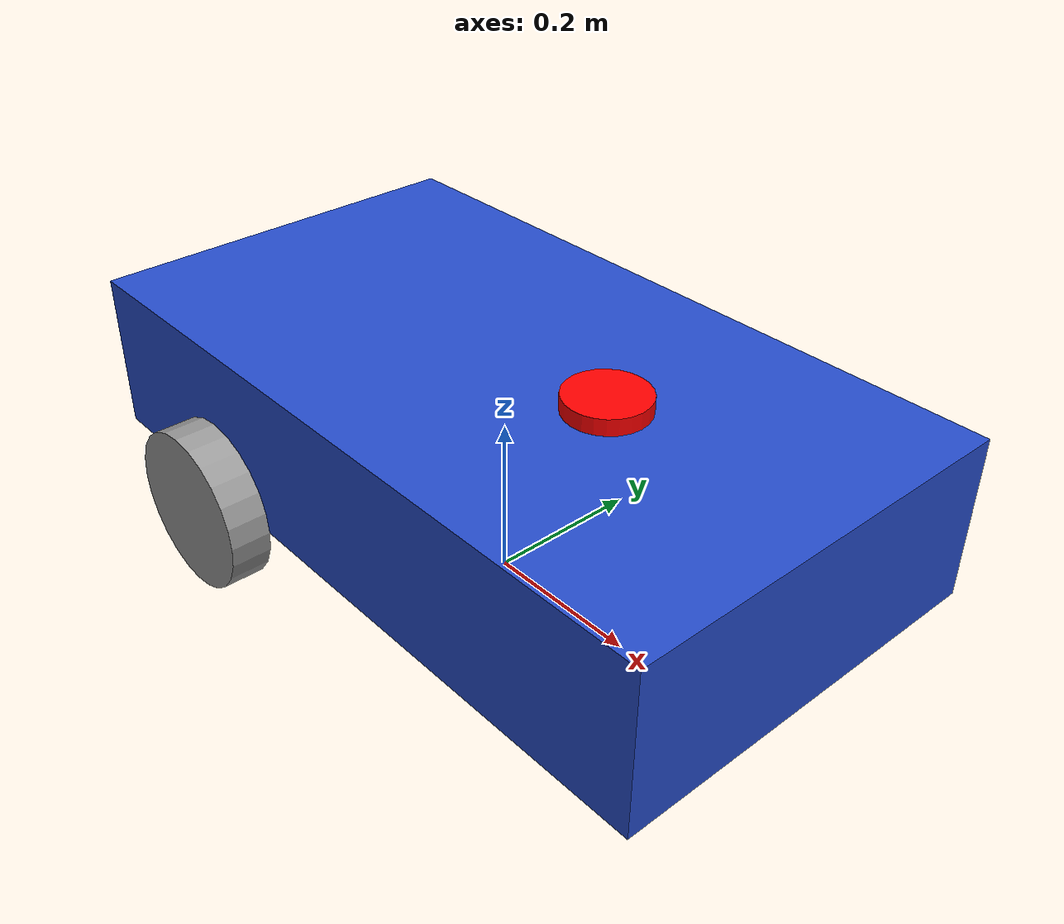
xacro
<?xml version="1.0"?>
<robot xmlns:xacro="http://www.ros.org/wiki/xacro">
    <xacro:property name="base_length" value="0.9" />
    <xacro:property name="base_width" value="0.5" />
    <xacro:property name="base_height" value="0.2" />
    <xacro:property name="wheel_radius" value="0.1" />
    <xacro:property name="wheel_length" value="0.05" />

    <link name="base_footprint" />

    <link name="base_link">
        <visual>
            <geometry>
                <box size="${base_length} ${base_width} ${base_height}" />
            </geometry>
            <origin xyz="0 0 ${base_height / 2.0}" rpy="0 0 0" />
            <material name="blue" />
        </visual>
        <collision>
            <geometry>
                <box size="${base_length} ${base_width} ${base_height}" />
            </geometry>
            <origin xyz="0 0 ${base_height / 2.0}" rpy="0 0 0" />
        </collision>
        <xacro:box_inertia m="5.0" l="${2*base_length}" w="${2*base_width}" h="${2*base_height}"
                        xyz="0 0 ${base_height / 2.0}" rpy="0 0 0" />
    </link>

    <xacro:macro name="wheel_link" params="prefix">
        <link name="${prefix}_wheel_link">
            <visual>
                <geometry>
                    <cylinder radius="${wheel_radius}" length="${wheel_length}" />
                </geometry>
                <origin xyz="0 0 0" rpy="${pi / 2.0} 0 0" />
                <material name="grey" />
            </visual>
            <collision>
                <geometry>
                    <cylinder radius="${wheel_radius}" length="${wheel_length}" />
                </geometry>
                <origin xyz="0 0 0" rpy="${pi / 2.0} 0 0" />
            </collision>
            <xacro:cylinder_inertia m="1.0" r="${2*wheel_radius}" h="${2*wheel_length}"
                                    xyz="0 0 0" rpy="${pi / 2.0} 0 0" />
        </link>
    </xacro:macro>

    <xacro:wheel_link prefix="right" />
    <xacro:wheel_link prefix="left" />

    <link name="caster_wheel_link">
        <visual>
            <geometry>
                <sphere radius="${wheel_radius / 2.0}" />
            </geometry>
            <origin xyz="0 0 0" rpy="0 0 0" />
            <material name="grey" />
        </visual>
        <collision>
            <geometry>
                <sphere radius="${wheel_radius / 2.0}" />
            </geometry>
            <origin xyz="0 0 0" rpy="0 0 0" />
        </collision>
        <xacro:sphere_inertia m="0.5" r="${2*wheel_radius / 2.0}" xyz="0 0 0" rpy="0 0 0" />
    </link>

    <link name="lidar">
        <visual >
            <origin xyz="0.0 0.0 0.0" rpy="0.0 0.0 0.0"/>
            <geometry>
                <cylinder radius="0.05" length="0.02" />
            </geometry>
            <material name="">
                <color rgba="1.0 0.0 0.0 1.0"/>

            </material>
        </visual>
        <collision>
            <origin xyz="0.0 0.0 0.0" rpy="0.0 0.0 0.0"/>
            <geometry>
                <cylinder radius="0.05" length="0.02" />
            </geometry>
        </collision>
    </link>

<gazebo reference="lidar">
        <material>Gazebo/Red</material>
        <sensor name="laser" type="ray">
            <pose> 0 0 0 0 0 0 </pose>
            <visualize>true</visualize>
            <update_rate>10</update_rate>
            <ray>
                <scan>
                    <horizontal>
                        <samples>360</samples>
                        <min_angle>-3.14</min_angle>
                        <max_angle>3.14</max_angle>
                    </horizontal>
                </scan>
                <range>
                    <min>0.3</min>
                    <max>12</max>
                </range>
            </ray>
            <plugin name="laser_controller" filename="libgazebo_ros_ray_sensor.so">
                <ros>
                    <argument>~/out:=scan</argument>
                </ros>
                <output_type>sensor_msgs/LaserScan</output_type>
                <frame_name>lidar</frame_name>
            </plugin>
        </sensor>
    </gazebo>

    <joint name="base_joint" type="fixed">
        <parent link="base_footprint" />
        <child link="base_link" />
        <origin xyz="0 0 ${wheel_radius}" rpy="0 0 0"/>
    </joint>

    <joint name="base_right_wheel_joint" type="continuous">
        <parent link="base_link" />
        <child link="right_wheel_link" />
        <origin xyz="${-base_length / 4.0} ${-(base_width + wheel_length) / 2.0} 0" rpy="0 0 0" />
        <axis xyz="0 1 0" />
    </joint>

    <joint name="base_left_wheel_joint" type="continuous">
        <parent link="base_link" />
        <child link="left_wheel_link" />
        <origin xyz="${-base_length / 4.0} ${(base_width + wheel_length) / 2.0} 0" rpy="0 0 0" />
        <axis xyz="0 1 0" />
    </joint>

    <joint name="base_caster_wheel_joint" type="continuous">
        <parent link="base_link" />
        <child link="caster_wheel_link" />
        <origin xyz="${base_length / 3.0} 0 ${-wheel_radius / 2.0}" rpy="0 0 0" />
    </joint>

    <joint name="base_lidar" type="fixed">
        <origin xyz="0.16 0.0 0.21" rpy="0.0 0.0 0.0"/>
        <parent link="base_link"/>
        <child link="lidar"/>
</joint>

</robot>
